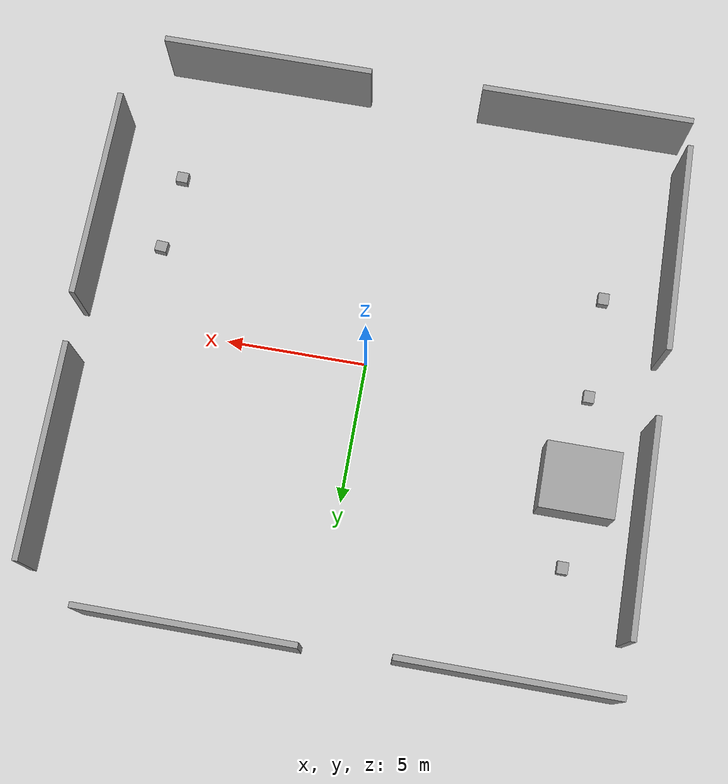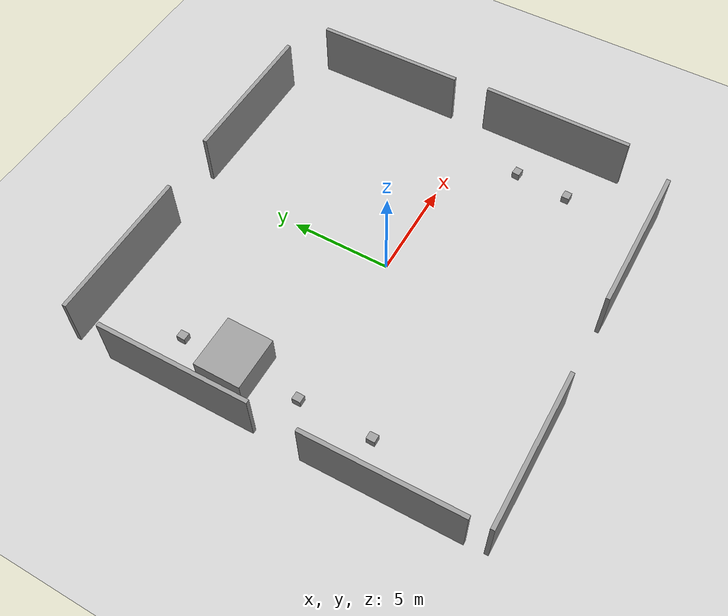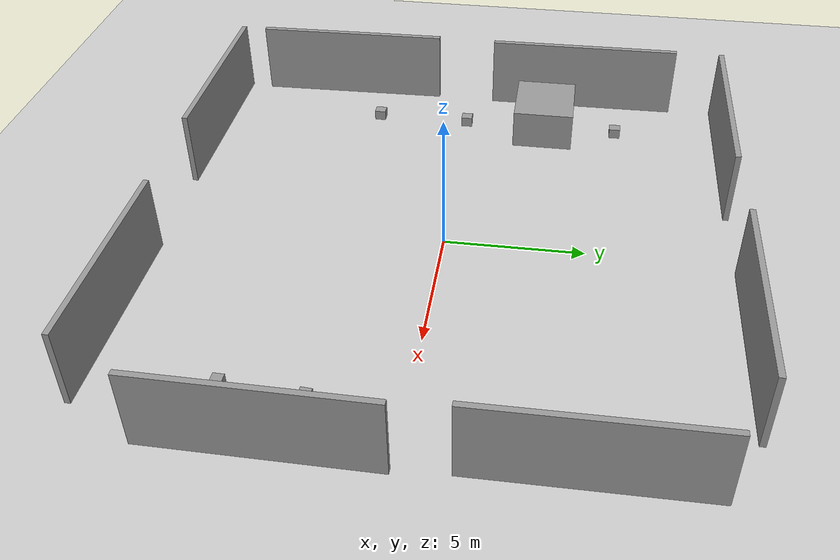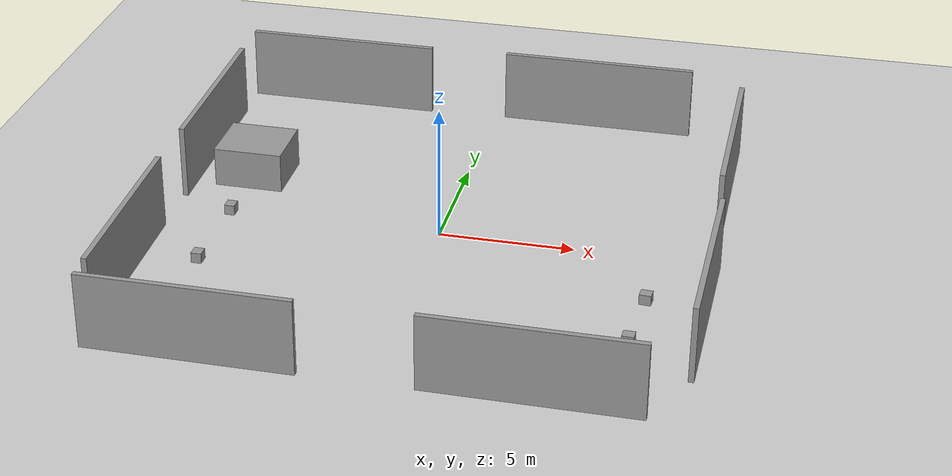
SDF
<sdf version="1.6">
 <world name="default">
  <light name="sun" type="directional">
   <pose>0 0 10 0 -0 0</pose>
   <diffuse>0.8 0.8 0.8 1</diffuse>
   <specular>0.1 0.1 0.1 1</specular>
   <attenuation>
    <range>1000</range>
    <constant>0.9</constant>
    <linear>0.01</linear>
    <quadratic>0.001</quadratic>
   </attenuation>
   <direction>-0.5 0.5 -1</direction>
  </light>
  <model name="ground_plane">
   <static>1</static>
   <link name="link">
    <collision name="collision">
     <geometry><plane><normal>0 0 1</normal><size>100 100</size></plane></geometry>
     <surface><friction><ode><mu>100</mu><mu2>50</mu2></ode></friction></surface>
    </collision>
    <visual name="visual">
     <cast_shadows>0</cast_shadows>
     <geometry><plane><normal>0 0 1</normal><size>100 100</size></plane></geometry>
     <material>
      <script><uri>file://media/materials/scripts/gazebo.material</uri><name>Gazebo/Grey</name></script>
     </material>
    </visual>
   </link>
  </model>
  <gravity>0 0 -9.8</gravity>
  <magnetic_field>6e-06 2.3e-05 -4.2e-05</magnetic_field>
  <atmosphere type="adiabatic"/>
  <physics name="default_physics" default="0" type="ode">
   <max_step_size>0.001</max_step_size>
   <real_time_factor>1</real_time_factor>
   <real_time_update_rate>1000</real_time_update_rate>
  </physics>
  <scene><ambient>0.4 0.4 0.4 1</ambient><background>0.7 0.7 0.7 1</background><shadows>1</shadows></scene>
  <spherical_coordinates>
   <surface_model>EARTH_WGS84</surface_model>
   <latitude_deg>0</latitude_deg>
   <longitude_deg>0</longitude_deg>
   <elevation>0</elevation>
   <heading_deg>0</heading_deg>
  </spherical_coordinates>
  <model name="unit_box_0">
   <pose>-7.92441 3.05309 0.194415 0 -0 2e-06</pose>
   <link name="link">
    <inertial>
     <mass>1</mass>
     <inertia>
      <ixx>0.166667</ixx>
      <ixy>0</ixy>
      <ixz>0</ixz>
      <iyy>0.166667</iyy>
      <iyz>0</iyz>
      <izz>0.166667</izz>
     </inertia>
    </inertial>
    <collision name="collision"><geometry><box><size>2.61118 2.33607 2.57181</size></box></geometry></collision>
    <visual name="visual">
     <geometry><box><size>2.61118 2.33607 2.57181</size></box></geometry>
     <material>
      <script><name>Gazebo/Grey</name><uri>file://media/materials/scripts/gazebo.material</uri></script>
     </material>
    </visual>
   </link>
  </model>
  <model name="unit_box_0_clone">
   <pose>8.0166 -3.00071 0.194415 0 -0 1.4997</pose>
   <link name="link">
    <inertial>
     <mass>1</mass>
     <inertia>
      <ixx>0.166667</ixx>
      <ixy>0</ixy>
      <ixz>0</ixz>
      <iyy>0.166667</iyy>
      <iyz>0</iyz>
      <izz>0.166667</izz>
     </inertia>
    </inertial>
    <collision name="collision">
     <geometry><box><size>0.382969 0.428069 0.388831</size></box></geometry>
    </collision>
    <visual name="visual">
     <geometry><box><size>0.382969 0.428069 0.388831</size></box></geometry>
     <material>
      <script><name>Gazebo/Grey</name><uri>file://media/materials/scripts/gazebo.material</uri></script>
     </material>
    </visual>
   </link>
  </model>
  <model name="unit_box_0_clone_clone">
   <pose>-7.85534 5.95882 0.194415 0 -0 0</pose>
   <link name="link">
    <inertial>
     <mass>1</mass>
     <inertia>
      <ixx>0.166667</ixx>
      <ixy>0</ixy>
      <ixz>0</ixz>
      <iyy>0.166667</iyy>
      <iyz>0</iyz>
      <izz>0.166667</izz>
     </inertia>
    </inertial>
    <collision name="collision">
     <geometry><box><size>0.382969 0.428069 0.388831</size></box></geometry>
    </collision>
    <visual name="visual">
     <geometry><box><size>0.382969 0.428069 0.388831</size></box></geometry>
     <material>
      <script><name>Gazebo/Grey</name><uri>file://media/materials/scripts/gazebo.material</uri></script>
     </material>
    </visual>
   </link>
  </model>
  <model name="unit_box_0_clone_clone_0">
   <pose>7.81818 -5.74074 0.194415 0 -0 1.54715</pose>
   <link name="link">
    <inertial>
     <mass>1</mass>
     <inertia>
      <ixx>0.166667</ixx>
      <ixy>0</ixy>
      <ixz>0</ixz>
      <iyy>0.166667</iyy>
      <iyz>0</iyz>
      <izz>0.166667</izz>
     </inertia>
    </inertial>
    <collision name="collision">
     <geometry><box><size>0.382969 0.428069 0.388831</size></box></geometry>
    </collision>
    <visual name="visual">
     <geometry><box><size>0.382969 0.428069 0.388831</size></box></geometry>
     <material>
      <script><name>Gazebo/Grey</name><uri>file://media/materials/scripts/gazebo.material</uri></script>
     </material>
    </visual>
   </link>
  </model>
  <model name="unit_box_0_clone_clone_1">
   <pose>-7.96734 -3.78516 0.194415 0 -0 0</pose>
   <link name="link">
    <inertial>
     <mass>1</mass>
     <inertia>
      <ixx>0.166667</ixx>
      <ixy>0</ixy>
      <ixz>0</ixz>
      <iyy>0.166667</iyy>
      <iyz>0</iyz>
      <izz>0.166667</izz>
     </inertia>
    </inertial>
    <collision name="collision">
     <geometry><box><size>0.382969 0.428069 0.388831</size></box></geometry>
    </collision>
    <visual name="visual">
     <geometry><box><size>0.382969 0.428069 0.388831</size></box></geometry>
     <material>
      <script><name>Gazebo/Grey</name><uri>file://media/materials/scripts/gazebo.material</uri></script>
     </material>
    </visual>
   </link>
  </model>
  <model name="unit_box_0_clone_clone_2">
   <pose>-7.93873 -0.13145 0.194415 0 -0 0</pose>
   <link name="link">
    <inertial>
     <mass>1</mass>
     <inertia>
      <ixx>0.166667</ixx>
      <ixy>0</ixy>
      <ixz>0</ixz>
      <iyy>0.166667</iyy>
      <iyz>0</iyz>
      <izz>0.166667</izz>
     </inertia>
    </inertial>
    <collision name="collision">
     <geometry><box><size>0.382969 0.428069 0.388831</size></box></geometry>
    </collision>
    <visual name="visual">
     <geometry><box><size>0.382969 0.428069 0.388831</size></box></geometry>
     <material>
      <script><name>Gazebo/Grey</name><uri>file://media/materials/scripts/gazebo.material</uri></script>
     </material>
    </visual>
   </link>
  </model>
  <light name="sun_0" type="directional">
   <pose>7.21357 -7.92239 10 0 -0 0</pose>
   <diffuse>0.8 0.8 0.8 1</diffuse>
   <specular>0.1 0.1 0.1 1</specular>
   <attenuation>
    <range>1000</range>
    <constant>0.9</constant>
    <linear>0.01</linear>
    <quadratic>0.001</quadratic>
   </attenuation>
   <direction>-0.5 0.5 -1</direction>
  </light>
  <model name="grey_wall">
   <static>1</static>
   <link name="link">
    <pose>0 0 1.4 0 -0 0</pose>
    <collision name="collision"><geometry><box><size>7.5 0.2 2.8</size></box></geometry></collision>
    <visual name="visual">
     <cast_shadows>0</cast_shadows>
     <geometry><box><size>7.5 0.2 2.8</size></box></geometry>
     <material>
      <script>
       <uri>model://grey_wall/materials/scripts</uri>
       <uri>model://grey_wall/materials/textures</uri>
       <name>vrc/grey_wall</name>
      </script>
     </material>
    </visual>
   </link>
   <pose>-6.39 10.028 0 0 -0 0</pose>
  </model>
  <model name="grey_wall_0">
   <static>1</static>
   <link name="link">
    <pose>0 0 1.4 0 -0 0</pose>
    <collision name="collision"><geometry><box><size>7.5 0.2 2.8</size></box></geometry></collision>
    <visual name="visual">
     <cast_shadows>0</cast_shadows>
     <geometry><box><size>7.5 0.2 2.8</size></box></geometry>
     <material>
      <script>
       <uri>model://grey_wall/materials/scripts</uri>
       <uri>model://grey_wall/materials/textures</uri>
       <name>vrc/grey_wall</name>
      </script>
     </material>
    </visual>
   </link>
   <pose>4.14447 10.196 0 0 -0 0</pose>
  </model>
  <model name="grey_wall_1">
   <static>1</static>
   <link name="link">
    <pose>0 0 1.4 0 -0 0</pose>
    <collision name="collision"><geometry><box><size>7.5 0.2 2.8</size></box></geometry></collision>
    <visual name="visual">
     <cast_shadows>0</cast_shadows>
     <geometry><box><size>7.5 0.2 2.8</size></box></geometry>
     <material>
      <script>
       <uri>model://grey_wall/materials/scripts</uri>
       <uri>model://grey_wall/materials/textures</uri>
       <name>vrc/grey_wall</name>
      </script>
     </material>
    </visual>
   </link>
   <pose>9.95791 5.39049 0 0 0 -1.56519</pose>
  </model>
  <model name="grey_wall_2">
   <static>1</static>
   <link name="link">
    <pose>0 0 1.4 0 -0 0</pose>
    <collision name="collision"><geometry><box><size>7.5 0.2 2.8</size></box></geometry></collision>
    <visual name="visual">
     <cast_shadows>0</cast_shadows>
     <geometry><box><size>7.5 0.2 2.8</size></box></geometry>
     <material>
      <script>
       <uri>model://grey_wall/materials/scripts</uri>
       <uri>model://grey_wall/materials/textures</uri>
       <name>vrc/grey_wall</name>
      </script>
     </material>
    </visual>
   </link>
   <pose>-6.20015 -10.022 0 0 -0 0</pose>
  </model>
  <model name="grey_wall_3">
   <static>1</static>
   <link name="link">
    <pose>0 0 1.4 0 -0 0</pose>
    <collision name="collision"><geometry><box><size>7.5 0.2 2.8</size></box></geometry></collision>
    <visual name="visual">
     <cast_shadows>0</cast_shadows>
     <geometry><box><size>7.5 0.2 2.8</size></box></geometry>
     <material>
      <script>
       <uri>model://grey_wall/materials/scripts</uri>
       <uri>model://grey_wall/materials/textures</uri>
       <name>vrc/grey_wall</name>
      </script>
     </material>
    </visual>
   </link>
   <pose>5.2765 -9.93737 0 0 -0 0</pose>
  </model>
  <model name="grey_wall_4">
   <static>1</static>
   <link name="link">
    <pose>0 0 1.4 0 -0 0</pose>
    <collision name="collision"><geometry><box><size>7.5 0.2 2.8</size></box></geometry></collision>
    <visual name="visual">
     <cast_shadows>0</cast_shadows>
     <geometry><box><size>7.5 0.2 2.8</size></box></geometry>
     <material>
      <script>
       <uri>model://grey_wall/materials/scripts</uri>
       <uri>model://grey_wall/materials/textures</uri>
       <name>vrc/grey_wall</name>
      </script>
     </material>
    </visual>
   </link>
   <pose>-10.0234 -5.33164 0 0 -0 1.59071</pose>
  </model>
  <model name="grey_wall_5">
   <static>1</static>
   <link name="link">
    <pose>0 0 1.4 0 -0 0</pose>
    <collision name="collision"><geometry><box><size>7.5 0.2 2.8</size></box></geometry></collision>
    <visual name="visual">
     <cast_shadows>0</cast_shadows>
     <geometry><box><size>7.5 0.2 2.8</size></box></geometry>
     <material>
      <script>
       <uri>model://grey_wall/materials/scripts</uri>
       <uri>model://grey_wall/materials/textures</uri>
       <name>vrc/grey_wall</name>
      </script>
     </material>
    </visual>
   </link>
   <pose>10.1531 -3.82423 0 0 -0 1.56516</pose>
  </model>
  <model name="grey_wall_6">
   <static>1</static>
   <link name="link">
    <pose>0 0 1.4 0 -0 0</pose>
    <collision name="collision"><geometry><box><size>7.5 0.2 2.8</size></box></geometry></collision>
    <visual name="visual">
     <cast_shadows>0</cast_shadows>
     <geometry><box><size>7.5 0.2 2.8</size></box></geometry>
     <material>
      <script>
       <uri>model://grey_wall/materials/scripts</uri>
       <uri>model://grey_wall/materials/textures</uri>
       <name>vrc/grey_wall</name>
      </script>
     </material>
    </visual>
   </link>
   <pose>-10.0865 4.48002 0 0 -0 1.58219</pose>
  </model>
 </world>
</sdf>
